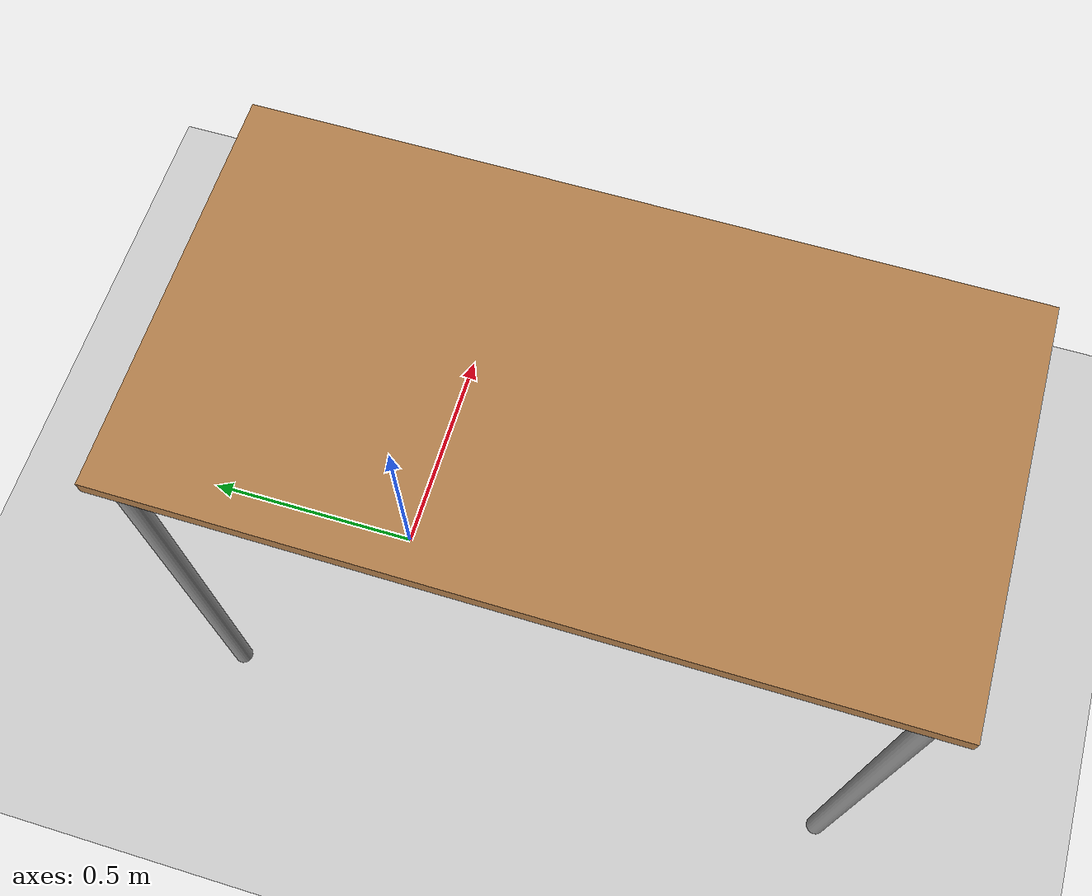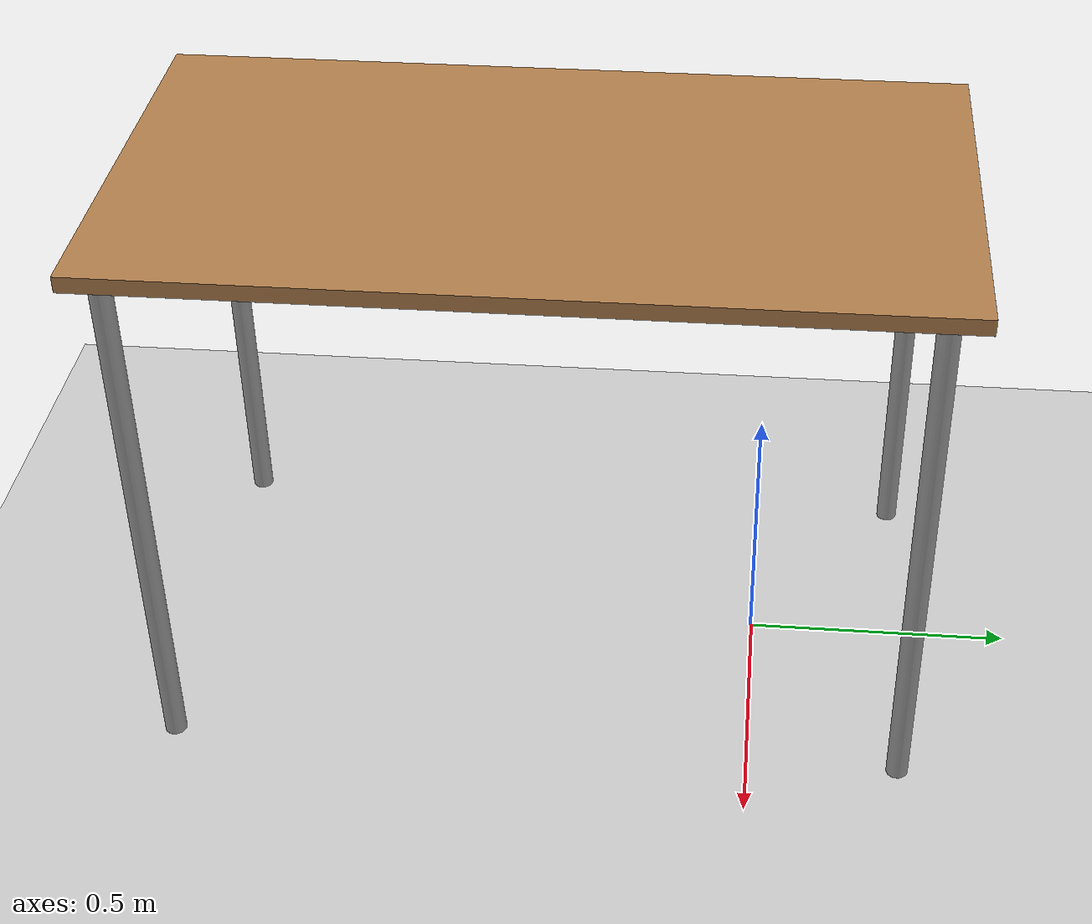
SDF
<?xml version="1.0" ?>
<sdf version="1.5">
  <world name="default">
    <!-- A global light source -->

    <light name='sun' type='directional'>
      <cast_shadows>0</cast_shadows>
      <pose frame=''>0 0 10 0 -0 0</pose>
      <diffuse>0.8 0.8 0.8 1</diffuse>
      <specular>0.1 0.1 0.1 1</specular>
      <attenuation>
        <range>1000</range>
        <constant>0.9</constant>
        <linear>0.01</linear>
        <quadratic>0.001</quadratic>
      </attenuation>
      <direction>-0.5 0.5 -1</direction>
    </light>

    <!-- A ground plane -->
    <include>
      <uri>model://ground_plane</uri>
    </include>

    <!-- Modelo de mesa -->
    <include>
      <uri>model://table</uri>
      <pose>0 -0.4 0 0 0 1.57</pose> <!-- Posicione a mesa no centro do mundo -->
    </include>

    <scene>
      <ambient>0.4 0.4 0.4 1</ambient>
      <background>0.7 0.7 0.7 1</background>
      <!-- modified (shadows) to reduce computation effort, default : true -->
      <shadows>false</shadows>
    </scene>

    <!-- Plugin do Gazebo -->
    <plugin name="gazebo_ros" filename="libgazebo_ros_api_plugin.so"/>

  </world>
</sdf>

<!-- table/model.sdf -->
<sdf version="1.5">
  <model name="table">
    <static>true</static>
    <link name="link">
      <collision name="surface">
        <pose>0 0 1.0 0 0 0</pose>
        <geometry>
          <box>
            <size>1.5 0.8 0.03</size>
          </box>
        </geometry>
        <surface>
          <friction>
            <ode>
              <mu>0.6</mu>
              <mu2>0.6</mu2>
            </ode>
          </friction>
        </surface>
      </collision>
      <visual name="visual1">
        <pose>0 0 1.0 0 0 0</pose>
        <geometry>
          <box>
            <size>1.5 0.8 0.03</size>
          </box>
        </geometry>
        <material>
          <script>
            <uri>model://media/materials/scripts/gazebo.material</uri>
            <name>Gazebo/Wood</name>
          </script>
        </material>
      </visual>
      <collision name="front_left_leg">
        <pose>0.68 0.38 0.5 0 0 0</pose>
        <geometry>
          <cylinder>
            <radius>0.02</radius>
            <length>1.0</length>
          </cylinder>
        </geometry>
      </collision>
      <visual name="front_left_leg">
        <pose>0.68 0.38 0.5 0 0 0</pose>
        <geometry>
          <cylinder>
            <radius>0.02</radius>
            <length>1.0</length>
          </cylinder>
        </geometry>
        <material>
          <script>
            <uri>model://media/materials/scripts/gazebo.material</uri>
            <name>Gazebo/Grey</name>
          </script>
        </material>
      </visual>
      <collision name="front_right_leg">
        <pose>0.68 -0.38 0.5 0 0 0</pose>
        <geometry>
          <cylinder>
            <radius>0.02</radius>
            <length>1.0</length>
          </cylinder>
        </geometry>
      </collision>
      <visual name="front_right_leg">
        <pose>0.68 -0.38 0.5 0 0 0</pose>
        <geometry>
          <cylinder>
            <radius>0.02</radius>
            <length>1.0</length>
          </cylinder>
        </geometry>
        <material>
          <script>
            <uri>model://media/materials/scripts/gazebo.material</uri>
            <name>Gazebo/Grey</name>
          </script>
        </material>
      </visual>
      <collision name="back_right_leg">
        <pose>-0.68 -0.38 0.5 0 0 0</pose>
        <geometry>
          <cylinder>
            <radius>0.02</radius>
            <length>1.0</length>
          </cylinder>
        </geometry>
      </collision>
      <visual name="back_right_leg">
        <pose>-0.68 -0.38 0.5 0 0 0</pose>
        <geometry>
          <cylinder>
            <radius>0.02</radius>
            <length>1.0</length>
          </cylinder>
        </geometry>
        <material>
          <script>
            <uri>model://media/materials/scripts/gazebo.material</uri>
            <name>Gazebo/Grey</name>
          </script>
        </material>
      </visual>
      <collision name="back_left_leg">
        <pose>-0.68 0.38 0.5 0 0 0</pose>
        <geometry>
          <cylinder>
            <radius>0.02</radius>
            <length>1.0</length>
          </cylinder>
        </geometry>
      </collision>
      <visual name="back_left_leg">
        <pose>-0.68 0.38 0.5 0 0 0</pose>
        <geometry>
          <cylinder>
            <radius>0.02</radius>
            <length>1.0</length>
          </cylinder>
        </geometry>
        <material>
          <script>
            <uri>model://media/materials/scripts/gazebo.material</uri>
            <name>Gazebo/Grey</name>
          </script>
        </material>
      </visual>
    </link>
  </model>
</sdf>
